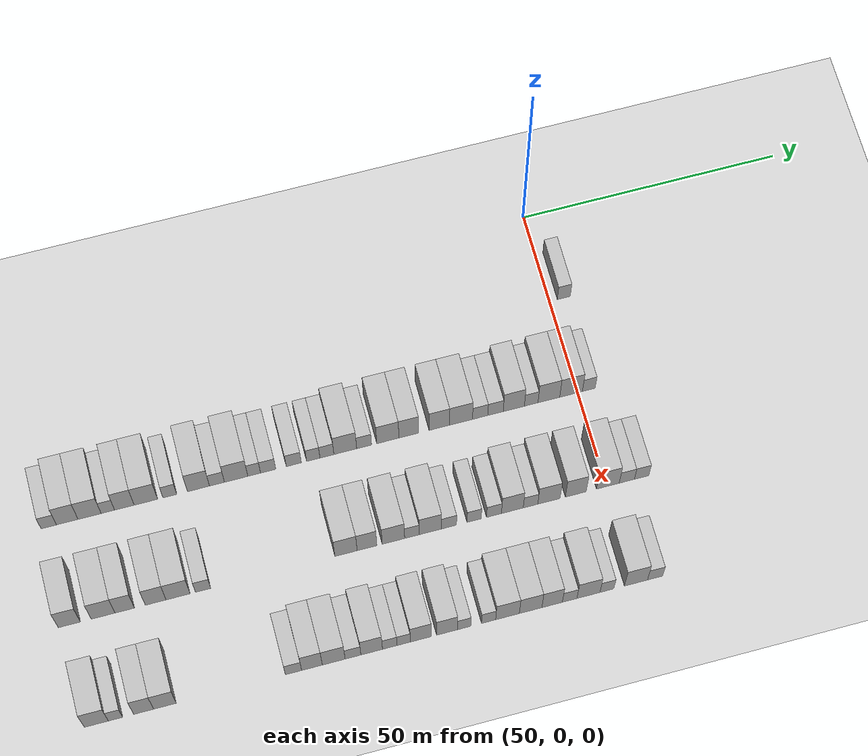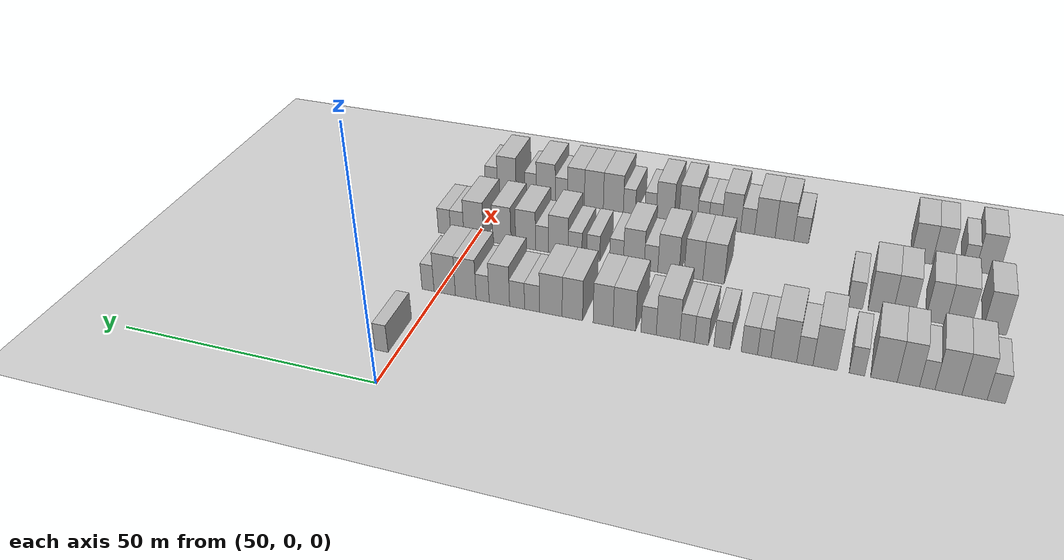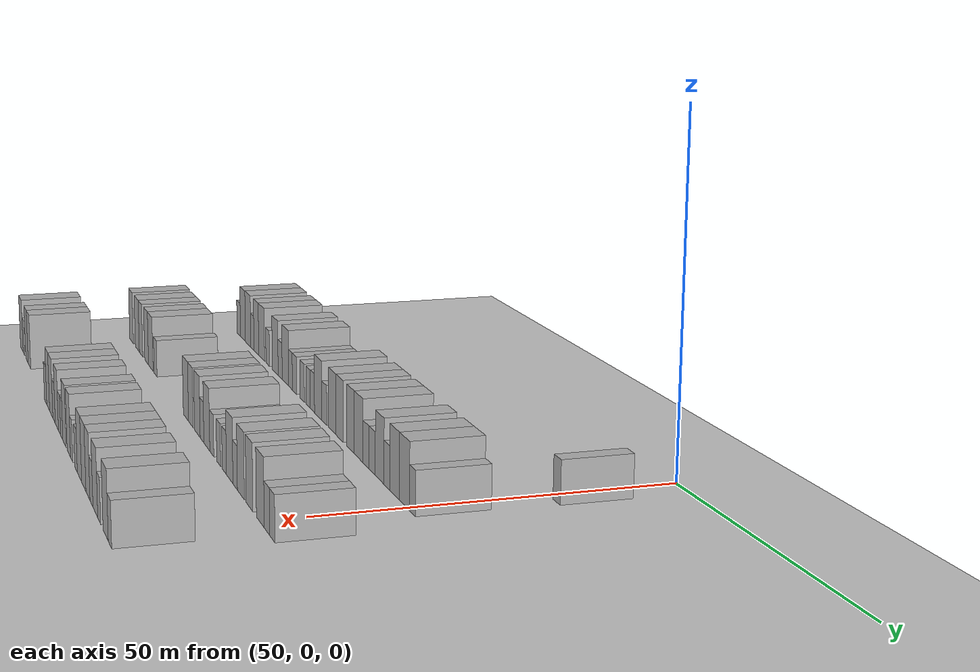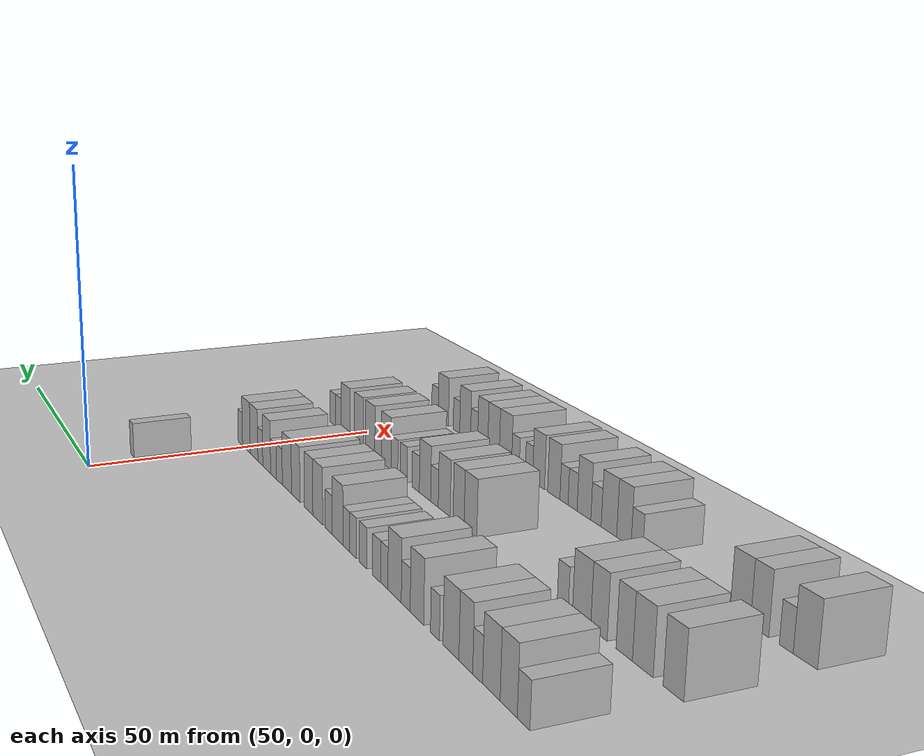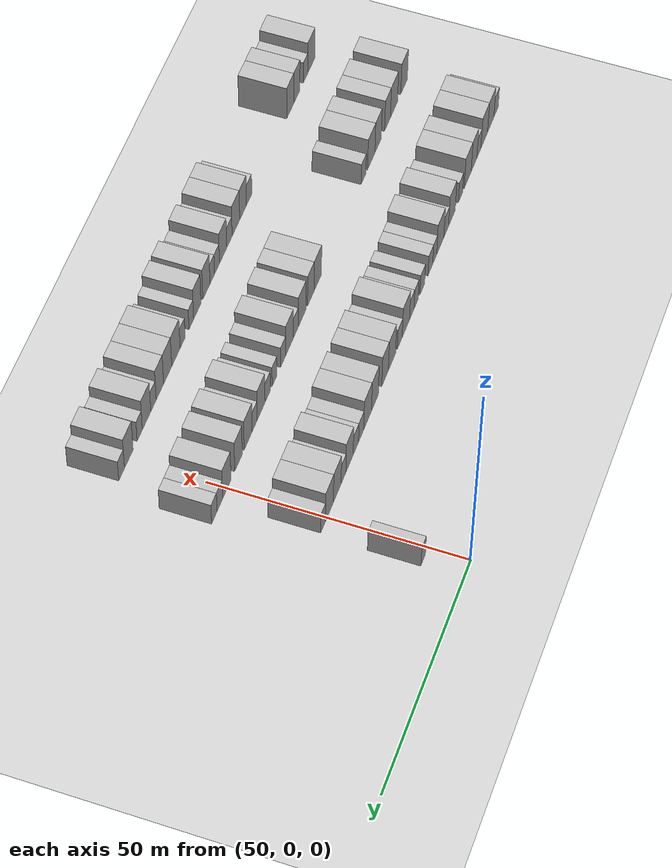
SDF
<sdf version="1.6">
 <world name="default">
  <include>
   <name>ground_plane_2</name>
   <uri>model://HANNAS_ground_plane</uri>
   <pose>100 0 0  0 0 0</pose>
  </include>
  <model name="building_432">
   <static>1</static>
   <pose>63.0000 2.8128 0 0.000000 0.000000 0.000000</pose>
   <link name="link">
    <pose>0 0 3.00 0 0 0</pose>
    <collision name="collision"><geometry><box><size>10.0000 2.5489 6.0000</size></box></geometry></collision>
    <visual name="visual">
     <cast_shadows>0</cast_shadows>
     <geometry><box><size>10.0000 2.5489 6.0000</size></box></geometry>
     <material>
      <script>
       <uri>model://HANNAS_wall/materials/scripts</uri>
       <uri>model://HANNAS_wall/materials/textures</uri>
       <name>vrc/HANNAS_wall</name>
      </script>
     </material>
    </visual>
   </link>
  </model>
  <model name="building_572">
   <static>1</static>
   <pose>82.0000 -100.5271 0 0.000000 0.000000 0.000000</pose>
   <link name="link">
    <pose>0 0 3.00 0 0 0</pose>
    <collision name="collision"><geometry><box><size>10.0000 2.8648 6.0000</size></box></geometry></collision>
    <visual name="visual">
     <cast_shadows>0</cast_shadows>
     <geometry><box><size>10.0000 2.8648 6.0000</size></box></geometry>
     <material>
      <script>
       <uri>model://HANNAS_wall/materials/scripts</uri>
       <uri>model://HANNAS_wall/materials/textures</uri>
       <name>vrc/HANNAS_wall</name>
      </script>
     </material>
    </visual>
   </link>
  </model>
  <model name="building_573">
   <static>1</static>
   <pose>82.0000 -97.0796 0 0.000000 0.000000 0.000000</pose>
   <link name="link">
    <pose>0 0 4.50 0 0 0</pose>
    <collision name="collision"><geometry><box><size>10.0000 4.0302 9.0000</size></box></geometry></collision>
    <visual name="visual">
     <cast_shadows>0</cast_shadows>
     <geometry><box><size>10.0000 4.0302 9.0000</size></box></geometry>
     <material>
      <script>
       <uri>model://HANNAS_wall/materials/scripts</uri>
       <uri>model://HANNAS_wall/materials/textures</uri>
       <name>vrc/HANNAS_wall</name>
      </script>
     </material>
    </visual>
   </link>
  </model>
  <model name="building_574">
   <static>1</static>
   <pose>82.0000 -92.9082 0 0.000000 0.000000 0.000000</pose>
   <link name="link">
    <pose>0 0 4.50 0 0 0</pose>
    <collision name="collision"><geometry><box><size>10.0000 4.3126 9.0000</size></box></geometry></collision>
    <visual name="visual">
     <cast_shadows>0</cast_shadows>
     <geometry><box><size>10.0000 4.3126 9.0000</size></box></geometry>
     <material>
      <script>
       <uri>model://HANNAS_wall/materials/scripts</uri>
       <uri>model://HANNAS_wall/materials/textures</uri>
       <name>vrc/HANNAS_wall</name>
      </script>
     </material>
    </visual>
   </link>
  </model>
  <model name="building_575">
   <static>1</static>
   <pose>82.0000 -89.4919 0 0.000000 0.000000 0.000000</pose>
   <link name="link">
    <pose>0 0 3.00 0 0 0</pose>
    <collision name="collision"><geometry><box><size>10.0000 2.5201 6.0000</size></box></geometry></collision>
    <visual name="visual">
     <cast_shadows>0</cast_shadows>
     <geometry><box><size>10.0000 2.5201 6.0000</size></box></geometry>
     <material>
      <script>
       <uri>model://HANNAS_wall/materials/scripts</uri>
       <uri>model://HANNAS_wall/materials/textures</uri>
       <name>vrc/HANNAS_wall</name>
      </script>
     </material>
    </visual>
   </link>
  </model>
  <model name="building_576">
   <static>1</static>
   <pose>82.0000 -86.4032 0 0.000000 0.000000 0.000000</pose>
   <link name="link">
    <pose>0 0 4.50 0 0 0</pose>
    <collision name="collision"><geometry><box><size>10.0000 3.6571 9.0000</size></box></geometry></collision>
    <visual name="visual">
     <cast_shadows>0</cast_shadows>
     <geometry><box><size>10.0000 3.6571 9.0000</size></box></geometry>
     <material>
      <script>
       <uri>model://HANNAS_wall/materials/scripts</uri>
       <uri>model://HANNAS_wall/materials/textures</uri>
       <name>vrc/HANNAS_wall</name>
      </script>
     </material>
    </visual>
   </link>
  </model>
  <model name="building_577">
   <static>1</static>
   <pose>82.0000 -82.3729 0 0.000000 0.000000 0.000000</pose>
   <link name="link">
    <pose>0 0 4.50 0 0 0</pose>
    <collision name="collision"><geometry><box><size>10.0000 4.4036 9.0000</size></box></geometry></collision>
    <visual name="visual">
     <cast_shadows>0</cast_shadows>
     <geometry><box><size>10.0000 4.4036 9.0000</size></box></geometry>
     <material>
      <script>
       <uri>model://HANNAS_wall/materials/scripts</uri>
       <uri>model://HANNAS_wall/materials/textures</uri>
       <name>vrc/HANNAS_wall</name>
      </script>
     </material>
    </visual>
   </link>
  </model>
  <model name="building_578">
   <static>1</static>
   <pose>82.0000 -77.8670 0 0.000000 0.000000 0.000000</pose>
   <link name="link">
    <pose>0 0 3.00 0 0 0</pose>
    <collision name="collision"><geometry><box><size>10.0000 2.6083 6.0000</size></box></geometry></collision>
    <visual name="visual">
     <cast_shadows>0</cast_shadows>
     <geometry><box><size>10.0000 2.6083 6.0000</size></box></geometry>
     <material>
      <script>
       <uri>model://HANNAS_wall/materials/scripts</uri>
       <uri>model://HANNAS_wall/materials/textures</uri>
       <name>vrc/HANNAS_wall</name>
      </script>
     </material>
    </visual>
   </link>
  </model>
  <model name="building_579">
   <static>1</static>
   <pose>82.0000 -72.4835 0 0.000000 0.000000 0.000000</pose>
   <link name="link">
    <pose>0 0 4.50 0 0 0</pose>
    <collision name="collision"><geometry><box><size>10.0000 4.1587 9.0000</size></box></geometry></collision>
    <visual name="visual">
     <cast_shadows>0</cast_shadows>
     <geometry><box><size>10.0000 4.1587 9.0000</size></box></geometry>
     <material>
      <script>
       <uri>model://HANNAS_wall/materials/scripts</uri>
       <uri>model://HANNAS_wall/materials/textures</uri>
       <name>vrc/HANNAS_wall</name>
      </script>
     </material>
    </visual>
   </link>
  </model>
  <model name="building_580">
   <static>1</static>
   <pose>82.0000 -68.9908 0 0.000000 0.000000 0.000000</pose>
   <link name="link">
    <pose>0 0 3.00 0 0 0</pose>
    <collision name="collision"><geometry><box><size>10.0000 2.8267 6.0000</size></box></geometry></collision>
    <visual name="visual">
     <cast_shadows>0</cast_shadows>
     <geometry><box><size>10.0000 2.8267 6.0000</size></box></geometry>
     <material>
      <script>
       <uri>model://HANNAS_wall/materials/scripts</uri>
       <uri>model://HANNAS_wall/materials/textures</uri>
       <name>vrc/HANNAS_wall</name>
      </script>
     </material>
    </visual>
   </link>
  </model>
  <model name="building_581">
   <static>1</static>
   <pose>82.0000 -65.3667 0 0.000000 0.000000 0.000000</pose>
   <link name="link">
    <pose>0 0 4.50 0 0 0</pose>
    <collision name="collision"><geometry><box><size>10.0000 4.4214 9.0000</size></box></geometry></collision>
    <visual name="visual">
     <cast_shadows>0</cast_shadows>
     <geometry><box><size>10.0000 4.4214 9.0000</size></box></geometry>
     <material>
      <script>
       <uri>model://HANNAS_wall/materials/scripts</uri>
       <uri>model://HANNAS_wall/materials/textures</uri>
       <name>vrc/HANNAS_wall</name>
      </script>
     </material>
    </visual>
   </link>
  </model>
  <model name="building_582">
   <static>1</static>
   <pose>82.0000 -61.9543 0 0.000000 0.000000 0.000000</pose>
   <link name="link">
    <pose>0 0 3.00 0 0 0</pose>
    <collision name="collision"><geometry><box><size>10.0000 2.4034 6.0000</size></box></geometry></collision>
    <visual name="visual">
     <cast_shadows>0</cast_shadows>
     <geometry><box><size>10.0000 2.4034 6.0000</size></box></geometry>
     <material>
      <script>
       <uri>model://HANNAS_wall/materials/scripts</uri>
       <uri>model://HANNAS_wall/materials/textures</uri>
       <name>vrc/HANNAS_wall</name>
      </script>
     </material>
    </visual>
   </link>
  </model>
  <model name="building_583">
   <static>1</static>
   <pose>82.0000 -59.3142 0 0.000000 0.000000 0.000000</pose>
   <link name="link">
    <pose>0 0 3.00 0 0 0</pose>
    <collision name="collision"><geometry><box><size>10.0000 2.8770 6.0000</size></box></geometry></collision>
    <visual name="visual">
     <cast_shadows>0</cast_shadows>
     <geometry><box><size>10.0000 2.8770 6.0000</size></box></geometry>
     <material>
      <script>
       <uri>model://HANNAS_wall/materials/scripts</uri>
       <uri>model://HANNAS_wall/materials/textures</uri>
       <name>vrc/HANNAS_wall</name>
      </script>
     </material>
    </visual>
   </link>
  </model>
  <model name="building_584">
   <static>1</static>
   <pose>82.0000 -54.4434 0 0.000000 0.000000 0.000000</pose>
   <link name="link">
    <pose>0 0 3.00 0 0 0</pose>
    <collision name="collision"><geometry><box><size>10.0000 2.8647 6.0000</size></box></geometry></collision>
    <visual name="visual">
     <cast_shadows>0</cast_shadows>
     <geometry><box><size>10.0000 2.8647 6.0000</size></box></geometry>
     <material>
      <script>
       <uri>model://HANNAS_wall/materials/scripts</uri>
       <uri>model://HANNAS_wall/materials/textures</uri>
       <name>vrc/HANNAS_wall</name>
      </script>
     </material>
    </visual>
   </link>
  </model>
  <model name="building_585">
   <static>1</static>
   <pose>82.0000 -50.7508 0 0.000000 0.000000 0.000000</pose>
   <link name="link">
    <pose>0 0 3.00 0 0 0</pose>
    <collision name="collision"><geometry><box><size>10.0000 2.5204 6.0000</size></box></geometry></collision>
    <visual name="visual">
     <cast_shadows>0</cast_shadows>
     <geometry><box><size>10.0000 2.5204 6.0000</size></box></geometry>
     <material>
      <script>
       <uri>model://HANNAS_wall/materials/scripts</uri>
       <uri>model://HANNAS_wall/materials/textures</uri>
       <name>vrc/HANNAS_wall</name>
      </script>
     </material>
    </visual>
   </link>
  </model>
  <model name="building_586">
   <static>1</static>
   <pose>82.0000 -48.1603 0 0.000000 0.000000 0.000000</pose>
   <link name="link">
    <pose>0 0 3.00 0 0 0</pose>
    <collision name="collision"><geometry><box><size>10.0000 2.6608 6.0000</size></box></geometry></collision>
    <visual name="visual">
     <cast_shadows>0</cast_shadows>
     <geometry><box><size>10.0000 2.6608 6.0000</size></box></geometry>
     <material>
      <script>
       <uri>model://HANNAS_wall/materials/scripts</uri>
       <uri>model://HANNAS_wall/materials/textures</uri>
       <name>vrc/HANNAS_wall</name>
      </script>
     </material>
    </visual>
   </link>
  </model>
  <model name="building_587">
   <static>1</static>
   <pose>82.0000 -44.6582 0 0.000000 0.000000 0.000000</pose>
   <link name="link">
    <pose>0 0 4.50 0 0 0</pose>
    <collision name="collision"><geometry><box><size>10.0000 4.3433 9.0000</size></box></geometry></collision>
    <visual name="visual">
     <cast_shadows>0</cast_shadows>
     <geometry><box><size>10.0000 4.3433 9.0000</size></box></geometry>
     <material>
      <script>
       <uri>model://HANNAS_wall/materials/scripts</uri>
       <uri>model://HANNAS_wall/materials/textures</uri>
       <name>vrc/HANNAS_wall</name>
      </script>
     </material>
    </visual>
   </link>
  </model>
  <model name="building_588">
   <static>1</static>
   <pose>82.0000 -41.0707 0 0.000000 0.000000 0.000000</pose>
   <link name="link">
    <pose>0 0 3.00 0 0 0</pose>
    <collision name="collision"><geometry><box><size>10.0000 2.8318 6.0000</size></box></geometry></collision>
    <visual name="visual">
     <cast_shadows>0</cast_shadows>
     <geometry><box><size>10.0000 2.8318 6.0000</size></box></geometry>
     <material>
      <script>
       <uri>model://HANNAS_wall/materials/scripts</uri>
       <uri>model://HANNAS_wall/materials/textures</uri>
       <name>vrc/HANNAS_wall</name>
      </script>
     </material>
    </visual>
   </link>
  </model>
  <model name="building_589">
   <static>1</static>
   <pose>82.0000 -36.5404 0 0.000000 0.000000 0.000000</pose>
   <link name="link">
    <pose>0 0 4.50 0 0 0</pose>
    <collision name="collision"><geometry><box><size>10.0000 4.2289 9.0000</size></box></geometry></collision>
    <visual name="visual">
     <cast_shadows>0</cast_shadows>
     <geometry><box><size>10.0000 4.2289 9.0000</size></box></geometry>
     <material>
      <script>
       <uri>model://HANNAS_wall/materials/scripts</uri>
       <uri>model://HANNAS_wall/materials/textures</uri>
       <name>vrc/HANNAS_wall</name>
      </script>
     </material>
    </visual>
   </link>
  </model>
  <model name="building_590">
   <static>1</static>
   <pose>82.0000 -32.5354 0 0.000000 0.000000 0.000000</pose>
   <link name="link">
    <pose>0 0 4.50 0 0 0</pose>
    <collision name="collision"><geometry><box><size>10.0000 3.7810 9.0000</size></box></geometry></collision>
    <visual name="visual">
     <cast_shadows>0</cast_shadows>
     <geometry><box><size>10.0000 3.7810 9.0000</size></box></geometry>
     <material>
      <script>
       <uri>model://HANNAS_wall/materials/scripts</uri>
       <uri>model://HANNAS_wall/materials/textures</uri>
       <name>vrc/HANNAS_wall</name>
      </script>
     </material>
    </visual>
   </link>
  </model>
  <model name="building_591">
   <static>1</static>
   <pose>82.0000 -26.6767 0 0.000000 0.000000 0.000000</pose>
   <link name="link">
    <pose>0 0 4.50 0 0 0</pose>
    <collision name="collision"><geometry><box><size>10.0000 3.9365 9.0000</size></box></geometry></collision>
    <visual name="visual">
     <cast_shadows>0</cast_shadows>
     <geometry><box><size>10.0000 3.9365 9.0000</size></box></geometry>
     <material>
      <script>
       <uri>model://HANNAS_wall/materials/scripts</uri>
       <uri>model://HANNAS_wall/materials/textures</uri>
       <name>vrc/HANNAS_wall</name>
      </script>
     </material>
    </visual>
   </link>
  </model>
  <model name="building_592">
   <static>1</static>
   <pose>82.0000 -22.5048 0 0.000000 0.000000 0.000000</pose>
   <link name="link">
    <pose>0 0 4.50 0 0 0</pose>
    <collision name="collision"><geometry><box><size>10.0000 4.4073 9.0000</size></box></geometry></collision>
    <visual name="visual">
     <cast_shadows>0</cast_shadows>
     <geometry><box><size>10.0000 4.4073 9.0000</size></box></geometry>
     <material>
      <script>
       <uri>model://HANNAS_wall/materials/scripts</uri>
       <uri>model://HANNAS_wall/materials/textures</uri>
       <name>vrc/HANNAS_wall</name>
      </script>
     </material>
    </visual>
   </link>
  </model>
  <model name="building_593">
   <static>1</static>
   <pose>82.0000 -18.8313 0 0.000000 0.000000 0.000000</pose>
   <link name="link">
    <pose>0 0 3.00 0 0 0</pose>
    <collision name="collision"><geometry><box><size>10.0000 2.9397 6.0000</size></box></geometry></collision>
    <visual name="visual">
     <cast_shadows>0</cast_shadows>
     <geometry><box><size>10.0000 2.9397 6.0000</size></box></geometry>
     <material>
      <script>
       <uri>model://HANNAS_wall/materials/scripts</uri>
       <uri>model://HANNAS_wall/materials/textures</uri>
       <name>vrc/HANNAS_wall</name>
      </script>
     </material>
    </visual>
   </link>
  </model>
  <model name="building_594">
   <static>1</static>
   <pose>82.0000 -15.8744 0 0.000000 0.000000 0.000000</pose>
   <link name="link">
    <pose>0 0 3.00 0 0 0</pose>
    <collision name="collision"><geometry><box><size>10.0000 2.9740 6.0000</size></box></geometry></collision>
    <visual name="visual">
     <cast_shadows>0</cast_shadows>
     <geometry><box><size>10.0000 2.9740 6.0000</size></box></geometry>
     <material>
      <script>
       <uri>model://HANNAS_wall/materials/scripts</uri>
       <uri>model://HANNAS_wall/materials/textures</uri>
       <name>vrc/HANNAS_wall</name>
      </script>
     </material>
    </visual>
   </link>
  </model>
  <model name="building_595">
   <static>1</static>
   <pose>82.0000 -12.3492 0 0.000000 0.000000 0.000000</pose>
   <link name="link">
    <pose>0 0 4.50 0 0 0</pose>
    <collision name="collision"><geometry><box><size>10.0000 4.0764 9.0000</size></box></geometry></collision>
    <visual name="visual">
     <cast_shadows>0</cast_shadows>
     <geometry><box><size>10.0000 4.0764 9.0000</size></box></geometry>
     <material>
      <script>
       <uri>model://HANNAS_wall/materials/scripts</uri>
       <uri>model://HANNAS_wall/materials/textures</uri>
       <name>vrc/HANNAS_wall</name>
      </script>
     </material>
    </visual>
   </link>
  </model>
  <model name="building_596">
   <static>1</static>
   <pose>82.0000 -8.9935 0 0.000000 0.000000 0.000000</pose>
   <link name="link">
    <pose>0 0 3.00 0 0 0</pose>
    <collision name="collision"><geometry><box><size>10.0000 2.6350 6.0000</size></box></geometry></collision>
    <visual name="visual">
     <cast_shadows>0</cast_shadows>
     <geometry><box><size>10.0000 2.6350 6.0000</size></box></geometry>
     <material>
      <script>
       <uri>model://HANNAS_wall/materials/scripts</uri>
       <uri>model://HANNAS_wall/materials/textures</uri>
       <name>vrc/HANNAS_wall</name>
      </script>
     </material>
    </visual>
   </link>
  </model>
  <model name="building_597">
   <static>1</static>
   <pose>82.0000 -5.5717 0 0.000000 0.000000 0.000000</pose>
   <link name="link">
    <pose>0 0 4.50 0 0 0</pose>
    <collision name="collision"><geometry><box><size>10.0000 4.2087 9.0000</size></box></geometry></collision>
    <visual name="visual">
     <cast_shadows>0</cast_shadows>
     <geometry><box><size>10.0000 4.2087 9.0000</size></box></geometry>
     <material>
      <script>
       <uri>model://HANNAS_wall/materials/scripts</uri>
       <uri>model://HANNAS_wall/materials/textures</uri>
       <name>vrc/HANNAS_wall</name>
      </script>
     </material>
    </visual>
   </link>
  </model>
  <model name="building_598">
   <static>1</static>
   <pose>82.0000 -1.2708 0 0.000000 0.000000 0.000000</pose>
   <link name="link">
    <pose>0 0 4.50 0 0 0</pose>
    <collision name="collision"><geometry><box><size>10.0000 4.3931 9.0000</size></box></geometry></collision>
    <visual name="visual">
     <cast_shadows>0</cast_shadows>
     <geometry><box><size>10.0000 4.3931 9.0000</size></box></geometry>
     <material>
      <script>
       <uri>model://HANNAS_wall/materials/scripts</uri>
       <uri>model://HANNAS_wall/materials/textures</uri>
       <name>vrc/HANNAS_wall</name>
      </script>
     </material>
    </visual>
   </link>
  </model>
  <model name="building_599">
   <static>1</static>
   <pose>82.0000 2.1687 0 0.000000 0.000000 0.000000</pose>
   <link name="link">
    <pose>0 0 3.00 0 0 0</pose>
    <collision name="collision"><geometry><box><size>10.0000 2.4858 6.0000</size></box></geometry></collision>
    <visual name="visual">
     <cast_shadows>0</cast_shadows>
     <geometry><box><size>10.0000 2.4858 6.0000</size></box></geometry>
     <material>
      <script>
       <uri>model://HANNAS_wall/materials/scripts</uri>
       <uri>model://HANNAS_wall/materials/textures</uri>
       <name>vrc/HANNAS_wall</name>
      </script>
     </material>
    </visual>
   </link>
  </model>
  <model name="building_756">
   <static>1</static>
   <pose>101.0000 -100.7473 0 0.000000 0.000000 0.000000</pose>
   <link name="link">
    <pose>0 0 4.50 0 0 0</pose>
    <collision name="collision"><geometry><box><size>10.0000 4.0680 9.0000</size></box></geometry></collision>
    <visual name="visual">
     <cast_shadows>0</cast_shadows>
     <geometry><box><size>10.0000 4.0680 9.0000</size></box></geometry>
     <material>
      <script>
       <uri>model://HANNAS_wall/materials/scripts</uri>
       <uri>model://HANNAS_wall/materials/textures</uri>
       <name>vrc/HANNAS_wall</name>
      </script>
     </material>
    </visual>
   </link>
  </model>
  <model name="building_757">
   <static>1</static>
   <pose>101.0000 -94.5350 0 0.000000 0.000000 0.000000</pose>
   <link name="link">
    <pose>0 0 4.50 0 0 0</pose>
    <collision name="collision"><geometry><box><size>10.0000 4.3565 9.0000</size></box></geometry></collision>
    <visual name="visual">
     <cast_shadows>0</cast_shadows>
     <geometry><box><size>10.0000 4.3565 9.0000</size></box></geometry>
     <material>
      <script>
       <uri>model://HANNAS_wall/materials/scripts</uri>
       <uri>model://HANNAS_wall/materials/textures</uri>
       <name>vrc/HANNAS_wall</name>
      </script>
     </material>
    </visual>
   </link>
  </model>
  <model name="building_758">
   <static>1</static>
   <pose>101.0000 -90.5518 0 0.000000 0.000000 0.000000</pose>
   <link name="link">
    <pose>0 0 4.50 0 0 0</pose>
    <collision name="collision"><geometry><box><size>10.0000 3.6098 9.0000</size></box></geometry></collision>
    <visual name="visual">
     <cast_shadows>0</cast_shadows>
     <geometry><box><size>10.0000 3.6098 9.0000</size></box></geometry>
     <material>
      <script>
       <uri>model://HANNAS_wall/materials/scripts</uri>
       <uri>model://HANNAS_wall/materials/textures</uri>
       <name>vrc/HANNAS_wall</name>
      </script>
     </material>
    </visual>
   </link>
  </model>
  <model name="building_759">
   <static>1</static>
   <pose>101.0000 -84.8295 0 0.000000 0.000000 0.000000</pose>
   <link name="link">
    <pose>0 0 4.50 0 0 0</pose>
    <collision name="collision"><geometry><box><size>10.0000 3.8349 9.0000</size></box></geometry></collision>
    <visual name="visual">
     <cast_shadows>0</cast_shadows>
     <geometry><box><size>10.0000 3.8349 9.0000</size></box></geometry>
     <material>
      <script>
       <uri>model://HANNAS_wall/materials/scripts</uri>
       <uri>model://HANNAS_wall/materials/textures</uri>
       <name>vrc/HANNAS_wall</name>
      </script>
     </material>
    </visual>
   </link>
  </model>
  <model name="building_760">
   <static>1</static>
   <pose>101.0000 -80.6857 0 0.000000 0.000000 0.000000</pose>
   <link name="link">
    <pose>0 0 4.50 0 0 0</pose>
    <collision name="collision"><geometry><box><size>10.0000 4.4526 9.0000</size></box></geometry></collision>
    <visual name="visual">
     <cast_shadows>0</cast_shadows>
     <geometry><box><size>10.0000 4.4526 9.0000</size></box></geometry>
     <material>
      <script>
       <uri>model://HANNAS_wall/materials/scripts</uri>
       <uri>model://HANNAS_wall/materials/textures</uri>
       <name>vrc/HANNAS_wall</name>
      </script>
     </material>
    </visual>
   </link>
  </model>
  <model name="building_761">
   <static>1</static>
   <pose>101.0000 -76.0388 0 0.000000 0.000000 0.000000</pose>
   <link name="link">
    <pose>0 0 3.00 0 0 0</pose>
    <collision name="collision"><geometry><box><size>10.0000 2.8412 6.0000</size></box></geometry></collision>
    <visual name="visual">
     <cast_shadows>0</cast_shadows>
     <geometry><box><size>10.0000 2.8412 6.0000</size></box></geometry>
     <material>
      <script>
       <uri>model://HANNAS_wall/materials/scripts</uri>
       <uri>model://HANNAS_wall/materials/textures</uri>
       <name>vrc/HANNAS_wall</name>
      </script>
     </material>
    </visual>
   </link>
  </model>
  <model name="building_762">
   <static>1</static>
   <pose>101.0000 -49.3616 0 0.000000 0.000000 0.000000</pose>
   <link name="link">
    <pose>0 0 4.50 0 0 0</pose>
    <collision name="collision"><geometry><box><size>10.0000 4.1711 9.0000</size></box></geometry></collision>
    <visual name="visual">
     <cast_shadows>0</cast_shadows>
     <geometry><box><size>10.0000 4.1711 9.0000</size></box></geometry>
     <material>
      <script>
       <uri>model://HANNAS_wall/materials/scripts</uri>
       <uri>model://HANNAS_wall/materials/textures</uri>
       <name>vrc/HANNAS_wall</name>
      </script>
     </material>
    </visual>
   </link>
  </model>
  <model name="building_763">
   <static>1</static>
   <pose>101.0000 -45.4177 0 0.000000 0.000000 0.000000</pose>
   <link name="link">
    <pose>0 0 4.50 0 0 0</pose>
    <collision name="collision"><geometry><box><size>10.0000 3.7168 9.0000</size></box></geometry></collision>
    <visual name="visual">
     <cast_shadows>0</cast_shadows>
     <geometry><box><size>10.0000 3.7168 9.0000</size></box></geometry>
     <material>
      <script>
       <uri>model://HANNAS_wall/materials/scripts</uri>
       <uri>model://HANNAS_wall/materials/textures</uri>
       <name>vrc/HANNAS_wall</name>
      </script>
     </material>
    </visual>
   </link>
  </model>
  <model name="building_764">
   <static>1</static>
   <pose>101.0000 -40.4476 0 0.000000 0.000000 0.000000</pose>
   <link name="link">
    <pose>0 0 4.50 0 0 0</pose>
    <collision name="collision"><geometry><box><size>10.0000 4.2233 9.0000</size></box></geometry></collision>
    <visual name="visual">
     <cast_shadows>0</cast_shadows>
     <geometry><box><size>10.0000 4.2233 9.0000</size></box></geometry>
     <material>
      <script>
       <uri>model://HANNAS_wall/materials/scripts</uri>
       <uri>model://HANNAS_wall/materials/textures</uri>
       <name>vrc/HANNAS_wall</name>
      </script>
     </material>
    </visual>
   </link>
  </model>
  <model name="building_765">
   <static>1</static>
   <pose>101.0000 -36.9584 0 0.000000 0.000000 0.000000</pose>
   <link name="link">
    <pose>0 0 3.00 0 0 0</pose>
    <collision name="collision"><geometry><box><size>10.0000 2.7552 6.0000</size></box></geometry></collision>
    <visual name="visual">
     <cast_shadows>0</cast_shadows>
     <geometry><box><size>10.0000 2.7552 6.0000</size></box></geometry>
     <material>
      <script>
       <uri>model://HANNAS_wall/materials/scripts</uri>
       <uri>model://HANNAS_wall/materials/textures</uri>
       <name>vrc/HANNAS_wall</name>
      </script>
     </material>
    </visual>
   </link>
  </model>
  <model name="building_766">
   <static>1</static>
   <pose>101.0000 -33.4723 0 0.000000 0.000000 0.000000</pose>
   <link name="link">
    <pose>0 0 4.50 0 0 0</pose>
    <collision name="collision"><geometry><box><size>10.0000 4.2169 9.0000</size></box></geometry></collision>
    <visual name="visual">
     <cast_shadows>0</cast_shadows>
     <geometry><box><size>10.0000 4.2169 9.0000</size></box></geometry>
     <material>
      <script>
       <uri>model://HANNAS_wall/materials/scripts</uri>
       <uri>model://HANNAS_wall/materials/textures</uri>
       <name>vrc/HANNAS_wall</name>
      </script>
     </material>
    </visual>
   </link>
  </model>
  <model name="building_767">
   <static>1</static>
   <pose>101.0000 -29.9541 0 0.000000 0.000000 0.000000</pose>
   <link name="link">
    <pose>0 0 3.00 0 0 0</pose>
    <collision name="collision"><geometry><box><size>10.0000 2.8195 6.0000</size></box></geometry></collision>
    <visual name="visual">
     <cast_shadows>0</cast_shadows>
     <geometry><box><size>10.0000 2.8195 6.0000</size></box></geometry>
     <material>
      <script>
       <uri>model://HANNAS_wall/materials/scripts</uri>
       <uri>model://HANNAS_wall/materials/textures</uri>
       <name>vrc/HANNAS_wall</name>
      </script>
     </material>
    </visual>
   </link>
  </model>
  <model name="building_768">
   <static>1</static>
   <pose>101.0000 -25.1994 0 0.000000 0.000000 0.000000</pose>
   <link name="link">
    <pose>0 0 3.00 0 0 0</pose>
    <collision name="collision"><geometry><box><size>10.0000 2.6898 6.0000</size></box></geometry></collision>
    <visual name="visual">
     <cast_shadows>0</cast_shadows>
     <geometry><box><size>10.0000 2.6898 6.0000</size></box></geometry>
     <material>
      <script>
       <uri>model://HANNAS_wall/materials/scripts</uri>
       <uri>model://HANNAS_wall/materials/textures</uri>
       <name>vrc/HANNAS_wall</name>
      </script>
     </material>
    </visual>
   </link>
  </model>
  <model name="building_769">
   <static>1</static>
   <pose>101.0000 -21.4416 0 0.000000 0.000000 0.000000</pose>
   <link name="link">
    <pose>0 0 3.00 0 0 0</pose>
    <collision name="collision"><geometry><box><size>10.0000 2.8259 6.0000</size></box></geometry></collision>
    <visual name="visual">
     <cast_shadows>0</cast_shadows>
     <geometry><box><size>10.0000 2.8259 6.0000</size></box></geometry>
     <material>
      <script>
       <uri>model://HANNAS_wall/materials/scripts</uri>
       <uri>model://HANNAS_wall/materials/textures</uri>
       <name>vrc/HANNAS_wall</name>
      </script>
     </material>
    </visual>
   </link>
  </model>
  <model name="building_770">
   <static>1</static>
   <pose>101.0000 -17.9550 0 0.000000 0.000000 0.000000</pose>
   <link name="link">
    <pose>0 0 4.50 0 0 0</pose>
    <collision name="collision"><geometry><box><size>10.0000 4.1472 9.0000</size></box></geometry></collision>
    <visual name="visual">
     <cast_shadows>0</cast_shadows>
     <geometry><box><size>10.0000 4.1472 9.0000</size></box></geometry>
     <material>
      <script>
       <uri>model://HANNAS_wall/materials/scripts</uri>
       <uri>model://HANNAS_wall/materials/textures</uri>
       <name>vrc/HANNAS_wall</name>
      </script>
     </material>
    </visual>
   </link>
  </model>
  <model name="building_771">
   <static>1</static>
   <pose>101.0000 -14.4968 0 0.000000 0.000000 0.000000</pose>
   <link name="link">
    <pose>0 0 3.00 0 0 0</pose>
    <collision name="collision"><geometry><box><size>10.0000 2.7692 6.0000</size></box></geometry></collision>
    <visual name="visual">
     <cast_shadows>0</cast_shadows>
     <geometry><box><size>10.0000 2.7692 6.0000</size></box></geometry>
     <material>
      <script>
       <uri>model://HANNAS_wall/materials/scripts</uri>
       <uri>model://HANNAS_wall/materials/textures</uri>
       <name>vrc/HANNAS_wall</name>
      </script>
     </material>
    </visual>
   </link>
  </model>
  <model name="building_772">
   <static>1</static>
   <pose>101.0000 -10.9852 0 0.000000 0.000000 0.000000</pose>
   <link name="link">
    <pose>0 0 4.50 0 0 0</pose>
    <collision name="collision"><geometry><box><size>10.0000 4.2542 9.0000</size></box></geometry></collision>
    <visual name="visual">
     <cast_shadows>0</cast_shadows>
     <geometry><box><size>10.0000 4.2542 9.0000</size></box></geometry>
     <material>
      <script>
       <uri>model://HANNAS_wall/materials/scripts</uri>
       <uri>model://HANNAS_wall/materials/textures</uri>
       <name>vrc/HANNAS_wall</name>
      </script>
     </material>
    </visual>
   </link>
  </model>
  <model name="building_773">
   <static>1</static>
   <pose>101.0000 -5.8746 0 0.000000 0.000000 0.000000</pose>
   <link name="link">
    <pose>0 0 4.50 0 0 0</pose>
    <collision name="collision"><geometry><box><size>10.0000 3.9669 9.0000</size></box></geometry></collision>
    <visual name="visual">
     <cast_shadows>0</cast_shadows>
     <geometry><box><size>10.0000 3.9669 9.0000</size></box></geometry>
     <material>
      <script>
       <uri>model://HANNAS_wall/materials/scripts</uri>
       <uri>model://HANNAS_wall/materials/textures</uri>
       <name>vrc/HANNAS_wall</name>
      </script>
     </material>
    </visual>
   </link>
  </model>
  <model name="building_774">
   <static>1</static>
   <pose>101.0000 0.2734 0 0.000000 0.000000 0.000000</pose>
   <link name="link">
    <pose>0 0 4.50 0 0 0</pose>
    <collision name="collision"><geometry><box><size>10.0000 4.3292 9.0000</size></box></geometry></collision>
    <visual name="visual">
     <cast_shadows>0</cast_shadows>
     <geometry><box><size>10.0000 4.3292 9.0000</size></box></geometry>
     <material>
      <script>
       <uri>model://HANNAS_wall/materials/scripts</uri>
       <uri>model://HANNAS_wall/materials/textures</uri>
       <name>vrc/HANNAS_wall</name>
      </script>
     </material>
    </visual>
   </link>
  </model>
  <model name="building_775">
   <static>1</static>
   <pose>101.0000 3.8981 0 0.000000 0.000000 0.000000</pose>
   <link name="link">
    <pose>0 0 3.00 0 0 0</pose>
    <collision name="collision"><geometry><box><size>10.0000 2.9202 6.0000</size></box></geometry></collision>
    <visual name="visual">
     <cast_shadows>0</cast_shadows>
     <geometry><box><size>10.0000 2.9202 6.0000</size></box></geometry>
     <material>
      <script>
       <uri>model://HANNAS_wall/materials/scripts</uri>
       <uri>model://HANNAS_wall/materials/textures</uri>
       <name>vrc/HANNAS_wall</name>
      </script>
     </material>
    </visual>
   </link>
  </model>
  <model name="building_776">
   <static>1</static>
   <pose>101.0000 6.7428 0 0.000000 0.000000 0.000000</pose>
   <link name="link">
    <pose>0 0 3.00 0 0 0</pose>
    <collision name="collision"><geometry><box><size>10.0000 2.7690 6.0000</size></box></geometry></collision>
    <visual name="visual">
     <cast_shadows>0</cast_shadows>
     <geometry><box><size>10.0000 2.7690 6.0000</size></box></geometry>
     <material>
      <script>
       <uri>model://HANNAS_wall/materials/scripts</uri>
       <uri>model://HANNAS_wall/materials/textures</uri>
       <name>vrc/HANNAS_wall</name>
      </script>
     </material>
    </visual>
   </link>
  </model>
  <model name="building_924">
   <static>1</static>
   <pose>120.0000 -99.8961 0 0.000000 0.000000 0.000000</pose>
   <link name="link">
    <pose>0 0 4.50 0 0 0</pose>
    <collision name="collision"><geometry><box><size>10.0000 4.3677 9.0000</size></box></geometry></collision>
    <visual name="visual">
     <cast_shadows>0</cast_shadows>
     <geometry><box><size>10.0000 4.3677 9.0000</size></box></geometry>
     <material>
      <script>
       <uri>model://HANNAS_wall/materials/scripts</uri>
       <uri>model://HANNAS_wall/materials/textures</uri>
       <name>vrc/HANNAS_wall</name>
      </script>
     </material>
    </visual>
   </link>
  </model>
  <model name="building_925">
   <static>1</static>
   <pose>120.0000 -96.4156 0 0.000000 0.000000 0.000000</pose>
   <link name="link">
    <pose>0 0 3.00 0 0 0</pose>
    <collision name="collision"><geometry><box><size>10.0000 2.5935 6.0000</size></box></geometry></collision>
    <visual name="visual">
     <cast_shadows>0</cast_shadows>
     <geometry><box><size>10.0000 2.5935 6.0000</size></box></geometry>
     <material>
      <script>
       <uri>model://HANNAS_wall/materials/scripts</uri>
       <uri>model://HANNAS_wall/materials/textures</uri>
       <name>vrc/HANNAS_wall</name>
      </script>
     </material>
    </visual>
   </link>
  </model>
  <model name="building_926">
   <static>1</static>
   <pose>120.0000 -91.3118 0 0.000000 0.000000 0.000000</pose>
   <link name="link">
    <pose>0 0 4.50 0 0 0</pose>
    <collision name="collision"><geometry><box><size>10.0000 3.6141 9.0000</size></box></geometry></collision>
    <visual name="visual">
     <cast_shadows>0</cast_shadows>
     <geometry><box><size>10.0000 3.6141 9.0000</size></box></geometry>
     <material>
      <script>
       <uri>model://HANNAS_wall/materials/scripts</uri>
       <uri>model://HANNAS_wall/materials/textures</uri>
       <name>vrc/HANNAS_wall</name>
      </script>
     </material>
    </visual>
   </link>
  </model>
  <model name="building_927">
   <static>1</static>
   <pose>120.0000 -87.4379 0 0.000000 0.000000 0.000000</pose>
   <link name="link">
    <pose>0 0 4.50 0 0 0</pose>
    <collision name="collision"><geometry><box><size>10.0000 4.1337 9.0000</size></box></geometry></collision>
    <visual name="visual">
     <cast_shadows>0</cast_shadows>
     <geometry><box><size>10.0000 4.1337 9.0000</size></box></geometry>
     <material>
      <script>
       <uri>model://HANNAS_wall/materials/scripts</uri>
       <uri>model://HANNAS_wall/materials/textures</uri>
       <name>vrc/HANNAS_wall</name>
      </script>
     </material>
    </visual>
   </link>
  </model>
  <model name="building_928">
   <static>1</static>
   <pose>120.0000 -63.8797 0 0.000000 0.000000 0.000000</pose>
   <link name="link">
    <pose>0 0 3.00 0 0 0</pose>
    <collision name="collision"><geometry><box><size>10.0000 2.9943 6.0000</size></box></geometry></collision>
    <visual name="visual">
     <cast_shadows>0</cast_shadows>
     <geometry><box><size>10.0000 2.9943 6.0000</size></box></geometry>
     <material>
      <script>
       <uri>model://HANNAS_wall/materials/scripts</uri>
       <uri>model://HANNAS_wall/materials/textures</uri>
       <name>vrc/HANNAS_wall</name>
      </script>
     </material>
    </visual>
   </link>
  </model>
  <model name="building_929">
   <static>1</static>
   <pose>120.0000 -60.4813 0 0.000000 0.000000 0.000000</pose>
   <link name="link">
    <pose>0 0 4.50 0 0 0</pose>
    <collision name="collision"><geometry><box><size>10.0000 3.8025 9.0000</size></box></geometry></collision>
    <visual name="visual">
     <cast_shadows>0</cast_shadows>
     <geometry><box><size>10.0000 3.8025 9.0000</size></box></geometry>
     <material>
      <script>
       <uri>model://HANNAS_wall/materials/scripts</uri>
       <uri>model://HANNAS_wall/materials/textures</uri>
       <name>vrc/HANNAS_wall</name>
      </script>
     </material>
    </visual>
   </link>
  </model>
  <model name="building_930">
   <static>1</static>
   <pose>120.0000 -56.4745 0 0.000000 0.000000 0.000000</pose>
   <link name="link">
    <pose>0 0 4.50 0 0 0</pose>
    <collision name="collision"><geometry><box><size>10.0000 4.2111 9.0000</size></box></geometry></collision>
    <visual name="visual">
     <cast_shadows>0</cast_shadows>
     <geometry><box><size>10.0000 4.2111 9.0000</size></box></geometry>
     <material>
      <script>
       <uri>model://HANNAS_wall/materials/scripts</uri>
       <uri>model://HANNAS_wall/materials/textures</uri>
       <name>vrc/HANNAS_wall</name>
      </script>
     </material>
    </visual>
   </link>
  </model>
  <model name="building_931">
   <static>1</static>
   <pose>120.0000 -52.9111 0 0.000000 0.000000 0.000000</pose>
   <link name="link">
    <pose>0 0 3.00 0 0 0</pose>
    <collision name="collision"><geometry><box><size>10.0000 2.9156 6.0000</size></box></geometry></collision>
    <visual name="visual">
     <cast_shadows>0</cast_shadows>
     <geometry><box><size>10.0000 2.9156 6.0000</size></box></geometry>
     <material>
      <script>
       <uri>model://HANNAS_wall/materials/scripts</uri>
       <uri>model://HANNAS_wall/materials/textures</uri>
       <name>vrc/HANNAS_wall</name>
      </script>
     </material>
    </visual>
   </link>
  </model>
  <model name="building_932">
   <static>1</static>
   <pose>120.0000 -49.4590 0 0.000000 0.000000 0.000000</pose>
   <link name="link">
    <pose>0 0 4.50 0 0 0</pose>
    <collision name="collision"><geometry><box><size>10.0000 3.9887 9.0000</size></box></geometry></collision>
    <visual name="visual">
     <cast_shadows>0</cast_shadows>
     <geometry><box><size>10.0000 3.9887 9.0000</size></box></geometry>
     <material>
      <script>
       <uri>model://HANNAS_wall/materials/scripts</uri>
       <uri>model://HANNAS_wall/materials/textures</uri>
       <name>vrc/HANNAS_wall</name>
      </script>
     </material>
    </visual>
   </link>
  </model>
  <model name="building_933">
   <static>1</static>
   <pose>120.0000 -46.1144 0 0.000000 0.000000 0.000000</pose>
   <link name="link">
    <pose>0 0 3.00 0 0 0</pose>
    <collision name="collision"><geometry><box><size>10.0000 2.7005 6.0000</size></box></geometry></collision>
    <visual name="visual">
     <cast_shadows>0</cast_shadows>
     <geometry><box><size>10.0000 2.7005 6.0000</size></box></geometry>
     <material>
      <script>
       <uri>model://HANNAS_wall/materials/scripts</uri>
       <uri>model://HANNAS_wall/materials/textures</uri>
       <name>vrc/HANNAS_wall</name>
      </script>
     </material>
    </visual>
   </link>
  </model>
  <model name="building_934">
   <static>1</static>
   <pose>120.0000 -43.5275 0 0.000000 0.000000 0.000000</pose>
   <link name="link">
    <pose>0 0 3.00 0 0 0</pose>
    <collision name="collision"><geometry><box><size>10.0000 2.4731 6.0000</size></box></geometry></collision>
    <visual name="visual">
     <cast_shadows>0</cast_shadows>
     <geometry><box><size>10.0000 2.4731 6.0000</size></box></geometry>
     <material>
      <script>
       <uri>model://HANNAS_wall/materials/scripts</uri>
       <uri>model://HANNAS_wall/materials/textures</uri>
       <name>vrc/HANNAS_wall</name>
      </script>
     </material>
    </visual>
   </link>
  </model>
  <model name="building_935">
   <static>1</static>
   <pose>120.0000 -40.3543 0 0.000000 0.000000 0.000000</pose>
   <link name="link">
    <pose>0 0 4.50 0 0 0</pose>
    <collision name="collision"><geometry><box><size>10.0000 3.8733 9.0000</size></box></geometry></collision>
    <visual name="visual">
     <cast_shadows>0</cast_shadows>
     <geometry><box><size>10.0000 3.8733 9.0000</size></box></geometry>
     <material>
      <script>
       <uri>model://HANNAS_wall/materials/scripts</uri>
       <uri>model://HANNAS_wall/materials/textures</uri>
       <name>vrc/HANNAS_wall</name>
      </script>
     </material>
    </visual>
   </link>
  </model>
  <model name="building_936">
   <static>1</static>
   <pose>120.0000 -35.4752 0 0.000000 0.000000 0.000000</pose>
   <link name="link">
    <pose>0 0 4.50 0 0 0</pose>
    <collision name="collision"><geometry><box><size>10.0000 3.8850 9.0000</size></box></geometry></collision>
    <visual name="visual">
     <cast_shadows>0</cast_shadows>
     <geometry><box><size>10.0000 3.8850 9.0000</size></box></geometry>
     <material>
      <script>
       <uri>model://HANNAS_wall/materials/scripts</uri>
       <uri>model://HANNAS_wall/materials/textures</uri>
       <name>vrc/HANNAS_wall</name>
      </script>
     </material>
    </visual>
   </link>
  </model>
  <model name="building_937">
   <static>1</static>
   <pose>120.0000 -32.2897 0 0.000000 0.000000 0.000000</pose>
   <link name="link">
    <pose>0 0 3.00 0 0 0</pose>
    <collision name="collision"><geometry><box><size>10.0000 2.4861 6.0000</size></box></geometry></collision>
    <visual name="visual">
     <cast_shadows>0</cast_shadows>
     <geometry><box><size>10.0000 2.4861 6.0000</size></box></geometry>
     <material>
      <script>
       <uri>model://HANNAS_wall/materials/scripts</uri>
       <uri>model://HANNAS_wall/materials/textures</uri>
       <name>vrc/HANNAS_wall</name>
      </script>
     </material>
    </visual>
   </link>
  </model>
  <model name="building_938">
   <static>1</static>
   <pose>120.0000 -27.7214 0 0.000000 0.000000 0.000000</pose>
   <link name="link">
    <pose>0 0 3.00 0 0 0</pose>
    <collision name="collision"><geometry><box><size>10.0000 2.6504 6.0000</size></box></geometry></collision>
    <visual name="visual">
     <cast_shadows>0</cast_shadows>
     <geometry><box><size>10.0000 2.6504 6.0000</size></box></geometry>
     <material>
      <script>
       <uri>model://HANNAS_wall/materials/scripts</uri>
       <uri>model://HANNAS_wall/materials/textures</uri>
       <name>vrc/HANNAS_wall</name>
      </script>
     </material>
    </visual>
   </link>
  </model>
  <model name="building_939">
   <static>1</static>
   <pose>120.0000 -24.1859 0 0.000000 0.000000 0.000000</pose>
   <link name="link">
    <pose>0 0 4.50 0 0 0</pose>
    <collision name="collision"><geometry><box><size>10.0000 4.4206 9.0000</size></box></geometry></collision>
    <visual name="visual">
     <cast_shadows>0</cast_shadows>
     <geometry><box><size>10.0000 4.4206 9.0000</size></box></geometry>
     <material>
      <script>
       <uri>model://HANNAS_wall/materials/scripts</uri>
       <uri>model://HANNAS_wall/materials/textures</uri>
       <name>vrc/HANNAS_wall</name>
      </script>
     </material>
    </visual>
   </link>
  </model>
  <model name="building_940">
   <static>1</static>
   <pose>120.0000 -19.8658 0 0.000000 0.000000 0.000000</pose>
   <link name="link">
    <pose>0 0 4.50 0 0 0</pose>
    <collision name="collision"><geometry><box><size>10.0000 4.2197 9.0000</size></box></geometry></collision>
    <visual name="visual">
     <cast_shadows>0</cast_shadows>
     <geometry><box><size>10.0000 4.2197 9.0000</size></box></geometry>
     <material>
      <script>
       <uri>model://HANNAS_wall/materials/scripts</uri>
       <uri>model://HANNAS_wall/materials/textures</uri>
       <name>vrc/HANNAS_wall</name>
      </script>
     </material>
    </visual>
   </link>
  </model>
  <model name="building_941">
   <static>1</static>
   <pose>120.0000 -15.8340 0 0.000000 0.000000 0.000000</pose>
   <link name="link">
    <pose>0 0 4.50 0 0 0</pose>
    <collision name="collision"><geometry><box><size>10.0000 3.8439 9.0000</size></box></geometry></collision>
    <visual name="visual">
     <cast_shadows>0</cast_shadows>
     <geometry><box><size>10.0000 3.8439 9.0000</size></box></geometry>
     <material>
      <script>
       <uri>model://HANNAS_wall/materials/scripts</uri>
       <uri>model://HANNAS_wall/materials/textures</uri>
       <name>vrc/HANNAS_wall</name>
      </script>
     </material>
    </visual>
   </link>
  </model>
  <model name="building_942">
   <static>1</static>
   <pose>120.0000 -12.5387 0 0.000000 0.000000 0.000000</pose>
   <link name="link">
    <pose>0 0 3.00 0 0 0</pose>
    <collision name="collision"><geometry><box><size>10.0000 2.7466 6.0000</size></box></geometry></collision>
    <visual name="visual">
     <cast_shadows>0</cast_shadows>
     <geometry><box><size>10.0000 2.7466 6.0000</size></box></geometry>
     <material>
      <script>
       <uri>model://HANNAS_wall/materials/scripts</uri>
       <uri>model://HANNAS_wall/materials/textures</uri>
       <name>vrc/HANNAS_wall</name>
      </script>
     </material>
    </visual>
   </link>
  </model>
  <model name="building_943">
   <static>1</static>
   <pose>120.0000 -9.0048 0 0.000000 0.000000 0.000000</pose>
   <link name="link">
    <pose>0 0 4.50 0 0 0</pose>
    <collision name="collision"><geometry><box><size>10.0000 4.3213 9.0000</size></box></geometry></collision>
    <visual name="visual">
     <cast_shadows>0</cast_shadows>
     <geometry><box><size>10.0000 4.3213 9.0000</size></box></geometry>
     <material>
      <script>
       <uri>model://HANNAS_wall/materials/scripts</uri>
       <uri>model://HANNAS_wall/materials/textures</uri>
       <name>vrc/HANNAS_wall</name>
      </script>
     </material>
    </visual>
   </link>
  </model>
  <model name="building_944">
   <static>1</static>
   <pose>120.0000 -5.5246 0 0.000000 0.000000 0.000000</pose>
   <link name="link">
    <pose>0 0 3.00 0 0 0</pose>
    <collision name="collision"><geometry><box><size>10.0000 2.6390 6.0000</size></box></geometry></collision>
    <visual name="visual">
     <cast_shadows>0</cast_shadows>
     <geometry><box><size>10.0000 2.6390 6.0000</size></box></geometry>
     <material>
      <script>
       <uri>model://HANNAS_wall/materials/scripts</uri>
       <uri>model://HANNAS_wall/materials/textures</uri>
       <name>vrc/HANNAS_wall</name>
      </script>
     </material>
    </visual>
   </link>
  </model>
  <model name="building_945">
   <static>1</static>
   <pose>120.0000 -0.0310 0 0.000000 0.000000 0.000000</pose>
   <link name="link">
    <pose>0 0 4.50 0 0 0</pose>
    <collision name="collision"><geometry><box><size>10.0000 4.3482 9.0000</size></box></geometry></collision>
    <visual name="visual">
     <cast_shadows>0</cast_shadows>
     <geometry><box><size>10.0000 4.3482 9.0000</size></box></geometry>
     <material>
      <script>
       <uri>model://HANNAS_wall/materials/scripts</uri>
       <uri>model://HANNAS_wall/materials/textures</uri>
       <name>vrc/HANNAS_wall</name>
      </script>
     </material>
    </visual>
   </link>
  </model>
  <model name="building_946">
   <static>1</static>
   <pose>120.0000 3.5674 0 0.000000 0.000000 0.000000</pose>
   <link name="link">
    <pose>0 0 3.00 0 0 0</pose>
    <collision name="collision"><geometry><box><size>10.0000 2.8486 6.0000</size></box></geometry></collision>
    <visual name="visual">
     <cast_shadows>0</cast_shadows>
     <geometry><box><size>10.0000 2.8486 6.0000</size></box></geometry>
     <material>
      <script>
       <uri>model://HANNAS_wall/materials/scripts</uri>
       <uri>model://HANNAS_wall/materials/textures</uri>
       <name>vrc/HANNAS_wall</name>
      </script>
     </material>
    </visual>
   </link>
  </model>
 </world>
</sdf>
